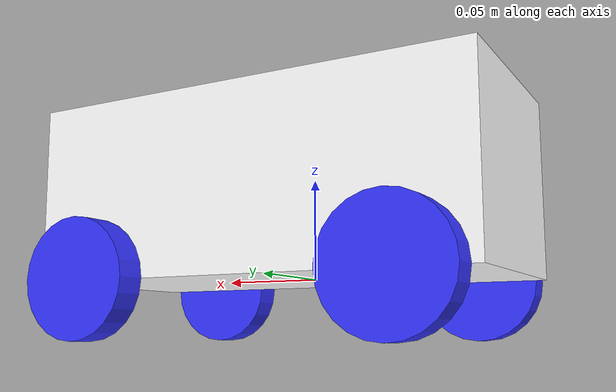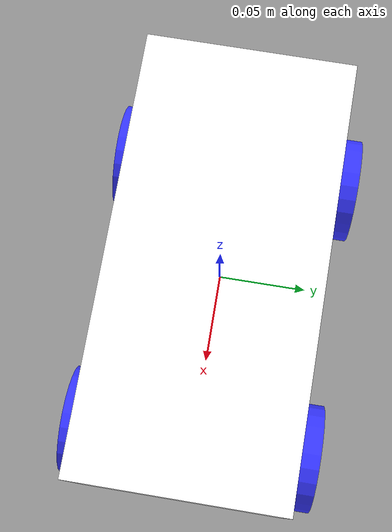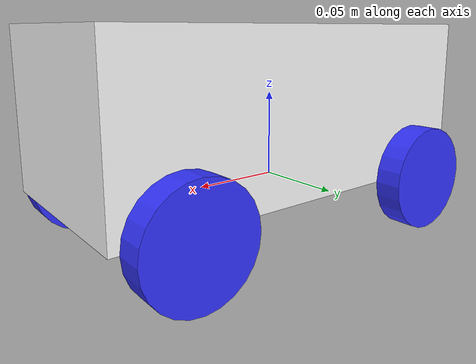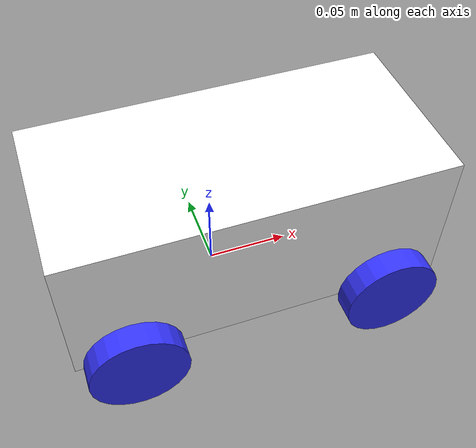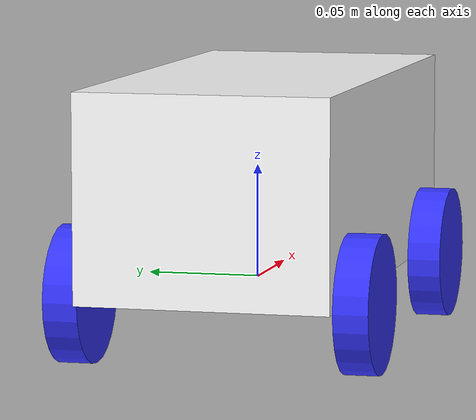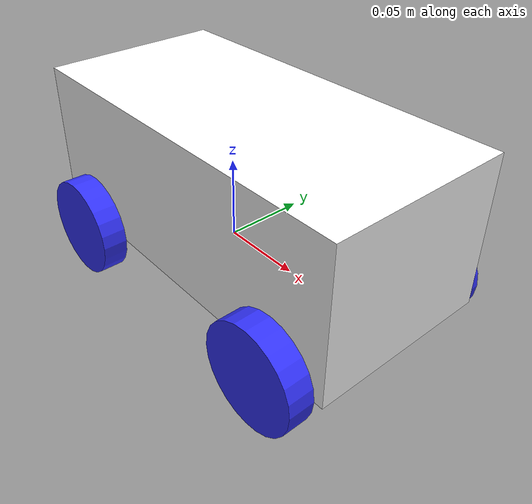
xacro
<?xml version="1.0"?>
<robot xmlns:xacro = "http://www.ros.org/wiki/xacro">
	<xacro:include filename = "inertial_macros.xacro" />

	<material name = "white"> <color rgba = "1 1 1 1"/> </material>
	<material name = "orange"> <color rgba = "1 0.3 0.1 1"/> </material>
	<material name = "blue"> <color rgba = "0.2 0.2 1 1"/> </material>
	<material name = "black"> <color rgba = "0 0 0 1"/> </material>
	<material name = "red"> <color rgba = "1 0 0 1"/> </material>

	<!-- BASE LINK DECLARATION -->
	<link name = "base_link" />

	<!-- CHASSIS MODELING -->
	<joint name = "chassis_joint" type="fixed">
		<parent link = "base_link"/>
		<child link = "chassis"/>
		<origin xyz = "-0.1 0 0"/>
	</joint>

	<link name = "chassis">
		<visual>
			<origin xyz = "0.115 0 0.045" rpy = "0 0 0"/>
			<geometry>
				<box size = "0.23 0.11 0.09"/>
			</geometry>
			<material name = "white"/>
		</visual>

		<collision>
			<origin xyz = "0.115 0 0.045" rpy="0 0 0"/>
			<geometry>
				<box size = "0.23 0.11 0.09"/>
			</geometry>
			<material name = "white"/>
		</collision>

		<xacro:inertial_box mass = "0.75" x = "0.23" y = "0.11" z = "0.09">
			<origin xyz = "0.115 0 0.045" rpy = "0 0 0"/>
		</xacro:inertial_box>
	</link>

	<gazebo reference="chassis">
		<material>Gazebo/White</material>
	</gazebo>

	<!-- LEFT WHEELS -->
	<joint name = "left_wheel_front_joint" type = "continuous">
		<parent link = "base_link"/>
		<child link = "left_wheel_front"/>
		<origin xyz = "0.095 0.0625 0" rpy = "-${pi/2} 0 0"/>
		<axis xyz = "0 0 1"/>
	</joint>

	<link name = "left_wheel_front">
		<visual>
			<geometry>
				<cylinder length = "0.015" radius = "0.03" />
			</geometry>
			<material name = "blue"/>
		</visual>

		<collision>
			<geometry>
				<cylinder length = "0.015" radius = "0.03" />
			</geometry>
		</collision>

		<xacro:inertial_cylinder mass = "0.1" length = "0.015" radius = "0.03">
			<origin xyz = "0 0 0" rpy = "0 0 0"/>
		</xacro:inertial_cylinder>
	</link>

	<gazebo reference="left_wheel_front">
		<material>Gazebo/Blue</material>
	</gazebo>

	<joint name="left_wheel_back_joint" type="continuous">
		<parent link="base_link"/>
		<child link="left_wheel_back"/>
		<origin xyz="-0.065 0.0625 0" rpy="-${pi/2} 0 0"/>
		<axis xyz="0 0 1"/>
	</joint>

	<link name="left_wheel_back">
		<visual>
			<geometry>
				<cylinder length = "0.015" radius = "0.03" />
			</geometry>
			<material name="blue"/>
		</visual>

		<collision>
			<geometry>
				<cylinder length = "0.015" radius = "0.03" />
			</geometry>
		</collision>

		<xacro:inertial_cylinder mass = "0.1" length = "0.015" radius = "0.03">
			<origin xyz = "0 0 0" rpy = "0 0 0"/>
		</xacro:inertial_cylinder>
	</link>

	<gazebo reference="left_wheel_back">
		<material>Gazebo/Blue</material>
	</gazebo>

	<!-- RIGHT WHEELS -->
	<joint name = "right_wheel_front_joint" type = "continuous">
		<parent link = "base_link"/>
		<child link = "right_wheel_front"/>
		<origin xyz = "0.095 -0.0625 0" rpy = "${pi/2} 0 0"/>
		<axis xyz = "0 0 -1"/>
	</joint>

	<link name="right_wheel_front">
		<visual>
			<geometry>
				<cylinder length = "0.015" radius="0.03" />
			</geometry>
			<material name="blue"/>
		</visual>

		<collision>
			<geometry>
				<cylinder length = "0.015" radius="0.03" />
			</geometry>
		</collision>

		<xacro:inertial_cylinder mass = "0.1" length = "0.015" radius = "0.03">
			<origin xyz = "0 0 0" rpy = "0 0 0"/>
		</xacro:inertial_cylinder>
	</link>

	<gazebo reference="right_wheel_front">
		<material>Gazebo/Blue</material>
	</gazebo>

	<joint name="right_wheel_back_joint" type="continuous">
		<parent link="base_link"/>
		<child link="right_wheel_back"/>
		<origin xyz="-0.065 -0.0625 0" rpy="${pi/2} 0 0"/>
		<axis xyz="0 0 -1"/>
	</joint>

	<link name="right_wheel_back">
		<visual>
			<geometry>
				<cylinder length = "0.015" radius = "0.03" />
			</geometry>
			<material name="blue"/>
		</visual>

		<collision>
			<geometry>
				<cylinder length = "0.015" radius = "0.03" />
			</geometry>
		</collision>

		<xacro:inertial_cylinder mass = "0.1" length = "0.015" radius = "0.03">
			<origin xyz = "0 0 0" rpy = "0 0 0"/>
		</xacro:inertial_cylinder>
	</link>

	<gazebo reference="right_wheel_back">
		<material>Gazebo/Blue</material>
	</gazebo>

</robot>
